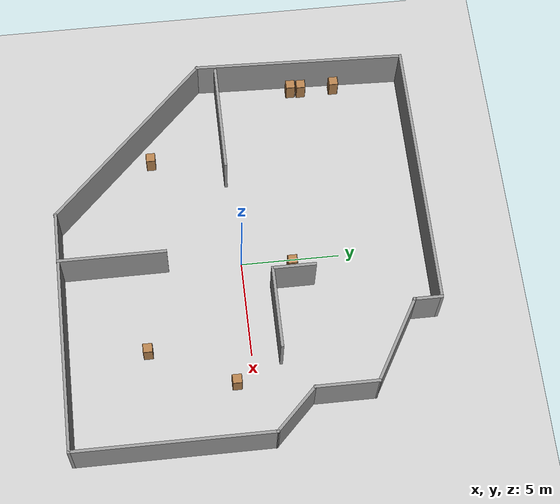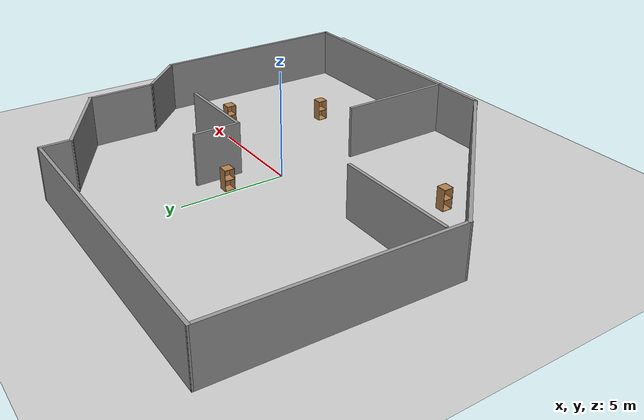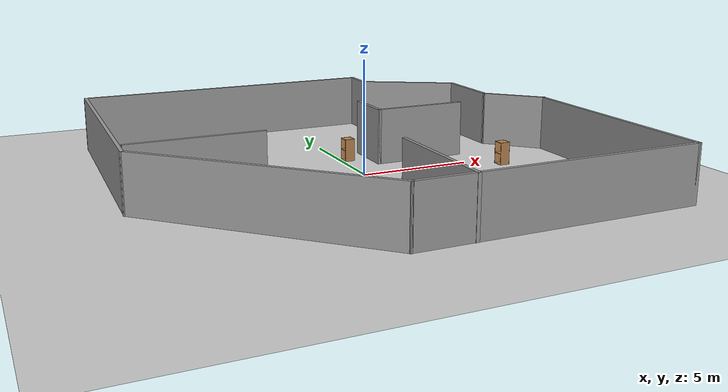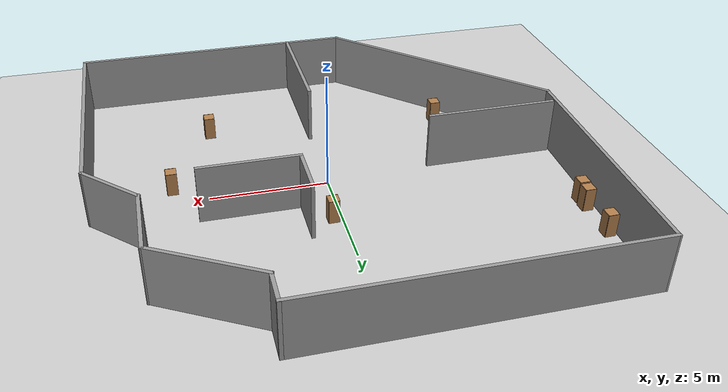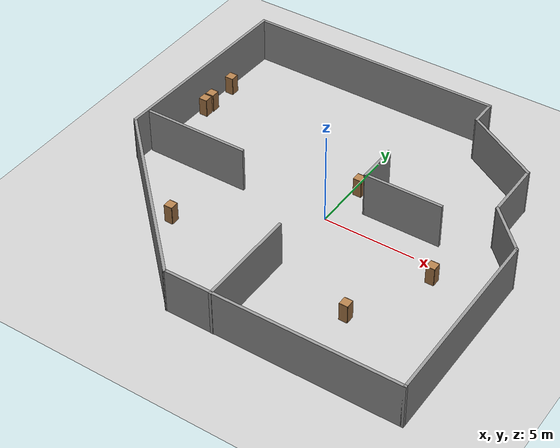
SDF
<sdf version="1.7">
 <world name="default">
  <plugin name="hello" filename="libhello.so"/>
  <light name="sun" type="directional">
   <pose>0 0 10 0 -0 0</pose>
   <diffuse>0.8 0.8 0.8 1</diffuse>
   <specular>0.2 0.2 0.2 1</specular>
   <attenuation>
    <range>1000</range>
    <constant>0.9</constant>
    <linear>0.01</linear>
    <quadratic>0.001</quadratic>
   </attenuation>
   <direction>-0.5 0.1 -0.9</direction>
   <spot><inner_angle>0</inner_angle><outer_angle>0</outer_angle><falloff>0</falloff></spot>
  </light>
  <model name="ground_plane">
   <static>1</static>
   <link name="link">
    <collision name="collision">
     <geometry><plane><normal>0 0 1</normal><size>100 100</size></plane></geometry>
     <surface><friction><ode><mu>100</mu><mu2>50</mu2></ode></friction></surface>
    </collision>
    <visual name="visual">
     <cast_shadows>0</cast_shadows>
     <geometry><plane><normal>0 0 1</normal><size>100 100</size></plane></geometry>
     <material>
      <script><uri>file://media/materials/scripts/gazebo.material</uri><name>Gazebo/Grey</name></script>
     </material>
    </visual>
   </link>
  </model>
  <gravity>0 0 -9.8</gravity>
  <magnetic_field>6e-06 2.3e-05 -4.2e-05</magnetic_field>
  <atmosphere type="adiabatic"/>
  <physics type="ode">
   <max_step_size>0.001</max_step_size>
   <real_time_factor>1</real_time_factor>
   <real_time_update_rate>1000</real_time_update_rate>
  </physics>
  <scene><ambient>0.4 0.4 0.4 1</ambient><background>0.7 0.7 0.7 1</background><shadows>1</shadows></scene>
  <spherical_coordinates>
   <surface_model>EARTH_WGS84</surface_model>
   <latitude_deg>0</latitude_deg>
   <longitude_deg>0</longitude_deg>
   <elevation>0</elevation>
   <heading_deg>0</heading_deg>
  </spherical_coordinates>
  <model name="building">
   <pose>-0.34261 0.15033 0 0 -0 0</pose>
   <link name="Wall_10">
    <collision name="Wall_10_Collision">
     <geometry><box><size>10 0.15 2.5</size></box></geometry>
     <pose>0 0 1.25 0 -0 0</pose>
    </collision>
    <visual name="Wall_10_Visual">
     <pose>0 0 1.25 0 -0 0</pose>
     <geometry><box><size>10 0.15 2.5</size></box></geometry>
     <material>
      <script><uri>file://media/materials/scripts/gazebo.material</uri><name>Gazebo/Grey</name></script>
      <ambient>1 1 1 1</ambient>
     </material>
     <meta><layer>0</layer></meta>
    </visual>
    <pose>10.0994 -4.36829 0 0 -0 1.5708</pose>
   </link>
   <link name="Wall_11">
    <collision name="Wall_11_Collision">
     <geometry><box><size>3 0.15 2.5</size></box></geometry>
     <pose>0 0 1.25 0 -0 0</pose>
    </collision>
    <visual name="Wall_11_Visual">
     <pose>0 0 1.25 0 -0 0</pose>
     <geometry><box><size>3 0.15 2.5</size></box></geometry>
     <material>
      <script><uri>file://media/materials/scripts/gazebo.material</uri><name>Gazebo/Grey</name></script>
      <ambient>1 1 1 1</ambient>
     </material>
     <meta><layer>0</layer></meta>
    </visual>
    <pose>9.09182 1.56434 0 0 -0 2.35619</pose>
   </link>
   <link name="Wall_12">
    <collision name="Wall_12_Collision">
     <geometry><box><size>3.25 0.15 2.5</size></box></geometry>
     <pose>0 0 1.25 0 -0 0</pose>
    </collision>
    <visual name="Wall_12_Visual">
     <pose>0 0 1.25 0 -0 0</pose>
     <geometry><box><size>3.25 0.15 2.5</size></box></geometry>
     <material>
      <script><uri>file://media/materials/scripts/gazebo.material</uri><name>Gazebo/Grey</name></script>
      <ambient>1 1 1 1</ambient>
     </material>
     <meta><layer>0</layer></meta>
    </visual>
    <pose>8.08419 4.12196 0 0 -0 1.5708</pose>
   </link>
   <link name="Wall_13">
    <collision name="Wall_13_Collision">
     <geometry><box><size>4.75 0.15 2.5</size></box></geometry>
     <pose>0 0 1.25 0 -0 0</pose>
    </collision>
    <visual name="Wall_13_Visual">
     <pose>0 0 1.25 0 -0 0</pose>
     <geometry><box><size>4.75 0.15 2.5</size></box></geometry>
     <material>
      <script><uri>file://media/materials/scripts/gazebo.material</uri><name>Gazebo/Grey</name></script>
      <ambient>1 1 1 1</ambient>
     </material>
     <meta><layer>0</layer></meta>
    </visual>
    <pose>6.09233 6.82196 0 0 -0 2.61799</pose>
   </link>
   <link name="Wall_14">
    <collision name="Wall_14_Collision">
     <geometry><box><size>1.5 0.15 2.5</size></box></geometry>
     <pose>0 0 1.25 0 -0 0</pose>
    </collision>
    <visual name="Wall_14_Visual">
     <pose>0 0 1.25 0 -0 0</pose>
     <geometry><box><size>1.5 0.15 2.5</size></box></geometry>
     <material>
      <script><uri>file://media/materials/scripts/gazebo.material</uri><name>Gazebo/Grey</name></script>
      <ambient>1 1 1 1</ambient>
     </material>
     <meta><layer>0</layer></meta>
    </visual>
    <pose>4.10047 8.64696 0 0 -0 1.5708</pose>
   </link>
   <link name="Wall_15">
    <collision name="Wall_15_Collision">
     <geometry><box><size>14 0.15 2.5</size></box></geometry>
     <pose>0 0 1.25 0 -0 0</pose>
    </collision>
    <visual name="Wall_15_Visual">
     <pose>0 0 1.25 0 -0 0</pose>
     <geometry><box><size>14 0.15 2.5</size></box></geometry>
     <material>
      <script><uri>file://media/materials/scripts/gazebo.material</uri><name>Gazebo/Grey</name></script>
      <ambient>1 1 1 1</ambient>
     </material>
     <meta><layer>0</layer></meta>
    </visual>
    <pose>-2.82453 9.32196 0 0 -0 3.14159</pose>
   </link>
   <link name="Wall_16">
    <collision name="Wall_16_Collision">
     <geometry><box><size>10.9221 0.15 2.5</size></box></geometry>
     <pose>0 0 1.25 0 -0 0</pose>
    </collision>
    <visual name="Wall_16_Visual">
     <pose>0 0 1.25 0 -0 0</pose>
     <geometry><box><size>10.9221 0.15 2.5</size></box></geometry>
     <material>
      <script><uri>file://media/materials/scripts/gazebo.material</uri><name>Gazebo/Grey</name></script>
      <ambient>1 1 1 1</ambient>
     </material>
     <meta><layer>0</layer></meta>
    </visual>
    <pose>-9.92449 3.93878 0 0 -0 -1.60329</pose>
   </link>
   <link name="Wall_8">
    <collision name="Wall_8_Collision">
     <geometry><box><size>11.25 0.15 2.5</size></box></geometry>
     <pose>0 0 1.25 0 -0 0</pose>
    </collision>
    <visual name="Wall_8_Visual">
     <pose>0 0 1.25 0 -0 0</pose>
     <geometry><box><size>11.25 0.15 2.5</size></box></geometry>
     <material>
      <script><uri>file://media/materials/scripts/gazebo.material</uri><name>Gazebo/Grey</name></script>
      <ambient>1 1 1 1</ambient>
     </material>
     <meta><layer>0</layer></meta>
    </visual>
    <pose>-6.175 -5.36885 0 0 -0 -0.785398</pose>
   </link>
   <link name="Wall_9">
    <collision name="Wall_9_Collision">
     <geometry><box><size>12.5 0.15 2.5</size></box></geometry>
     <pose>0 0 1.25 0 -0 0</pose>
    </collision>
    <visual name="Wall_9_Visual">
     <pose>0 0 1.25 0 -0 0</pose>
     <geometry><box><size>12.5 0.15 2.5</size></box></geometry>
     <material>
      <script><uri>file://media/materials/scripts/gazebo.material</uri><name>Gazebo/Grey</name></script>
      <ambient>1 1 1 1</ambient>
     </material>
     <meta><layer>0</layer></meta>
    </visual>
    <pose>3.92444 -9.29329 0 0 -0 0</pose>
   </link>
   <static>1</static>
  </model>
  <model name="cabinet">
   <static>1</static>
   <link name="cabinet_bottom_plate">
    <inertial>
     <pose>0 0 -1 0 -0 0</pose>
     <inertia><ixx>2.05</ixx><ixy>0</ixy><ixz>0</ixz><iyy>2.05</iyy><iyz>0</iyz><izz>2.05</izz></inertia>
     <mass>25</mass>
    </inertial>
    <collision name="cabinet_bottom_plate_geom">
     <pose>0 0 0.01 0 -0 0</pose>
     <geometry><box><size>0.45 0.45 0.02</size></box></geometry>
    </collision>
    <visual name="cabinet_bottom_plate_geom_visual">
     <pose>0 0 0.01 0 -0 0</pose>
     <geometry><box><size>0.45 0.45 0.02</size></box></geometry>
     <material>
      <script><uri>file://media/materials/scripts/gazebo.material</uri><name>Gazebo/Wood</name></script>
     </material>
    </visual>
    <collision name="cabinet_bottom_plate_geom_cabinet_back_plate">
     <pose>0.235 0 0.51 0 -0 0</pose>
     <geometry><box><size>0.02 0.45 1.02</size></box></geometry>
    </collision>
    <visual name="cabinet_bottom_plate_geom_cabinet_back_plate_visual">
     <pose>0.235 0 0.51 0 -0 0</pose>
     <geometry><box><size>0.02 0.45 1.02</size></box></geometry>
     <material>
      <script><uri>file://media/materials/scripts/gazebo.material</uri><name>Gazebo/Wood</name></script>
     </material>
    </visual>
    <collision name="cabinet_bottom_plate_geom_cabinet_left_plate">
     <pose>0 0.235 0.51 0 -0 0</pose>
     <geometry><box><size>0.45 0.02 1.02</size></box></geometry>
    </collision>
    <visual name="cabinet_bottom_plate_geom_cabinet_left_plate_visual">
     <pose>0 0.235 0.51 0 -0 0</pose>
     <geometry><box><size>0.45 0.02 1.02</size></box></geometry>
     <material>
      <script><uri>file://media/materials/scripts/gazebo.material</uri><name>Gazebo/Wood</name></script>
     </material>
    </visual>
    <collision name="cabinet_bottom_plate_geom_cabinet_middle_plate">
     <pose>0 0 0.51 0 -0 0</pose>
     <geometry><box><size>0.45 0.45 0.02</size></box></geometry>
    </collision>
    <visual name="cabinet_bottom_plate_geom_cabinet_middle_plate_visual">
     <pose>0 0 0.51 0 -0 0</pose>
     <geometry><box><size>0.45 0.45 0.02</size></box></geometry>
     <material>
      <script><uri>file://media/materials/scripts/gazebo.material</uri><name>Gazebo/Wood</name></script>
     </material>
    </visual>
    <collision name="cabinet_bottom_plate_geom_cabinet_right_plate">
     <pose>0 -0.235 0.51 0 -0 0</pose>
     <geometry><box><size>0.45 0.02 1.02</size></box></geometry>
    </collision>
    <visual name="cabinet_bottom_plate_geom_cabinet_right_plate_visual">
     <pose>0 -0.235 0.51 0 -0 0</pose>
     <geometry><box><size>0.45 0.02 1.02</size></box></geometry>
     <material>
      <script><uri>file://media/materials/scripts/gazebo.material</uri><name>Gazebo/Wood</name></script>
     </material>
    </visual>
    <collision name="cabinet_bottom_plate_geom_cabinet_top_plate">
     <pose>0 0 1.01 0 -0 0</pose>
     <geometry><box><size>0.45 0.45 0.02</size></box></geometry>
    </collision>
    <visual name="cabinet_bottom_plate_geom_cabinet_top_plate_visual">
     <pose>0 0 1.01 0 -0 0</pose>
     <geometry><box><size>0.45 0.45 0.02</size></box></geometry>
     <material>
      <script><uri>file://media/materials/scripts/gazebo.material</uri><name>Gazebo/Wood</name></script>
     </material>
    </visual>
   </link>
   <pose>0.370948 2.56032 0 0 -0 0</pose>
  </model>
  <model name="cabinet_0">
   <static>1</static>
   <link name="cabinet_bottom_plate">
    <inertial>
     <pose>0 0 -1 0 -0 0</pose>
     <inertia><ixx>2.05</ixx><ixy>0</ixy><ixz>0</ixz><iyy>2.05</iyy><iyz>0</iyz><izz>2.05</izz></inertia>
     <mass>25</mass>
    </inertial>
    <collision name="cabinet_bottom_plate_geom">
     <pose>0 0 0.01 0 -0 0</pose>
     <geometry><box><size>0.45 0.45 0.02</size></box></geometry>
    </collision>
    <visual name="cabinet_bottom_plate_geom_visual">
     <pose>0 0 0.01 0 -0 0</pose>
     <geometry><box><size>0.45 0.45 0.02</size></box></geometry>
     <material>
      <script><uri>file://media/materials/scripts/gazebo.material</uri><name>Gazebo/Wood</name></script>
     </material>
    </visual>
    <collision name="cabinet_bottom_plate_geom_cabinet_back_plate">
     <pose>0.235 0 0.51 0 -0 0</pose>
     <geometry><box><size>0.02 0.45 1.02</size></box></geometry>
    </collision>
    <visual name="cabinet_bottom_plate_geom_cabinet_back_plate_visual">
     <pose>0.235 0 0.51 0 -0 0</pose>
     <geometry><box><size>0.02 0.45 1.02</size></box></geometry>
     <material>
      <script><uri>file://media/materials/scripts/gazebo.material</uri><name>Gazebo/Wood</name></script>
     </material>
    </visual>
    <collision name="cabinet_bottom_plate_geom_cabinet_left_plate">
     <pose>0 0.235 0.51 0 -0 0</pose>
     <geometry><box><size>0.45 0.02 1.02</size></box></geometry>
    </collision>
    <visual name="cabinet_bottom_plate_geom_cabinet_left_plate_visual">
     <pose>0 0.235 0.51 0 -0 0</pose>
     <geometry><box><size>0.45 0.02 1.02</size></box></geometry>
     <material>
      <script><uri>file://media/materials/scripts/gazebo.material</uri><name>Gazebo/Wood</name></script>
     </material>
    </visual>
    <collision name="cabinet_bottom_plate_geom_cabinet_middle_plate">
     <pose>0 0 0.51 0 -0 0</pose>
     <geometry><box><size>0.45 0.45 0.02</size></box></geometry>
    </collision>
    <visual name="cabinet_bottom_plate_geom_cabinet_middle_plate_visual">
     <pose>0 0 0.51 0 -0 0</pose>
     <geometry><box><size>0.45 0.45 0.02</size></box></geometry>
     <material>
      <script><uri>file://media/materials/scripts/gazebo.material</uri><name>Gazebo/Wood</name></script>
     </material>
    </visual>
    <collision name="cabinet_bottom_plate_geom_cabinet_right_plate">
     <pose>0 -0.235 0.51 0 -0 0</pose>
     <geometry><box><size>0.45 0.02 1.02</size></box></geometry>
    </collision>
    <visual name="cabinet_bottom_plate_geom_cabinet_right_plate_visual">
     <pose>0 -0.235 0.51 0 -0 0</pose>
     <geometry><box><size>0.45 0.02 1.02</size></box></geometry>
     <material>
      <script><uri>file://media/materials/scripts/gazebo.material</uri><name>Gazebo/Wood</name></script>
     </material>
    </visual>
    <collision name="cabinet_bottom_plate_geom_cabinet_top_plate">
     <pose>0 0 1.01 0 -0 0</pose>
     <geometry><box><size>0.45 0.45 0.02</size></box></geometry>
    </collision>
    <visual name="cabinet_bottom_plate_geom_cabinet_top_plate_visual">
     <pose>0 0 1.01 0 -0 0</pose>
     <geometry><box><size>0.45 0.45 0.02</size></box></geometry>
     <material>
      <script><uri>file://media/materials/scripts/gazebo.material</uri><name>Gazebo/Wood</name></script>
     </material>
    </visual>
   </link>
   <pose>4.41041 -5.12108 0 0 -0 0</pose>
  </model>
  <model name="building2">
   <pose>-2.35403 -2.82924 0 0 -0 0</pose>
   <link name="Wall_0">
    <collision name="Wall_0_Collision">
     <geometry><box><size>5.5 0.15 2.5</size></box></geometry>
     <pose>0 0 1.25 0 -0 0</pose>
    </collision>
    <visual name="Wall_0_Visual">
     <pose>0 0 1.25 0 -0 0</pose>
     <geometry><box><size>5.5 0.15 2.5</size></box></geometry>
     <material>
      <script><uri>file://media/materials/scripts/gazebo.material</uri><name>Gazebo/Grey</name></script>
      <ambient>1 1 1 1</ambient>
     </material>
     <meta><layer>0</layer></meta>
    </visual>
    <pose>2.30403 -3.65576 0 0 -0 -1.5708</pose>
   </link>
   <link name="Wall_2">
    <collision name="Wall_2_Collision">
     <geometry><box><size>5.75 0.15 2.5</size></box></geometry>
     <pose>0 0 1.25 0 -0 0</pose>
    </collision>
    <visual name="Wall_2_Visual">
     <pose>0 0 1.25 0 -0 0</pose>
     <geometry><box><size>5.75 0.15 2.5</size></box></geometry>
     <material>
      <script><uri>file://media/materials/scripts/gazebo.material</uri><name>Gazebo/Grey</name></script>
      <ambient>1 1 1 1</ambient>
     </material>
     <meta><layer>0</layer></meta>
    </visual>
    <pose>-5.04784 2.47639 0 0 -0 3.14159</pose>
   </link>
   <link name="Wall_4">
    <collision name="Wall_4_Collision">
     <geometry><box><size>2.25 0.15 2.5</size></box></geometry>
     <pose>0 0 1.25 0 -0 0</pose>
    </collision>
    <visual name="Wall_4_Visual">
     <pose>0 0 1.25 0 -0 0</pose>
     <geometry><box><size>2.25 0.15 2.5</size></box></geometry>
     <material>
      <script><uri>file://media/materials/scripts/gazebo.material</uri><name>Gazebo/Grey</name></script>
      <ambient>1 1 1 1</ambient>
     </material>
     <meta><layer>0</layer></meta>
    </visual>
    <pose>3.74784 5.28076 0 0 -0 -1.5708</pose>
   </link>
   <link name="Wall_5">
    <collision name="Wall_5_Collision">
     <geometry><box><size>4.25 0.15 2.5</size></box></geometry>
     <pose>0 0 1.25 0 -0 0</pose>
    </collision>
    <visual name="Wall_5_Visual">
     <pose>0 0 1.25 0 -0 0</pose>
     <geometry><box><size>4.25 0.15 2.5</size></box></geometry>
     <material>
      <script><uri>file://media/materials/scripts/gazebo.material</uri><name>Gazebo/Grey</name></script>
      <ambient>1 1 1 1</ambient>
     </material>
     <meta><layer>0</layer></meta>
    </visual>
    <pose>5.79784 4.23076 0 0 -0 0</pose>
   </link>
   <static>1</static>
  </model>
  <model name="cabinet_1">
   <static>1</static>
   <link name="cabinet_bottom_plate">
    <inertial>
     <pose>0 0 -1 0 -0 0</pose>
     <inertia><ixx>2.05</ixx><ixy>0</ixy><ixz>0</ixz><iyy>2.05</iyy><iyz>0</iyz><izz>2.05</izz></inertia>
     <mass>25</mass>
    </inertial>
    <collision name="cabinet_bottom_plate_geom">
     <pose>0 0 0.01 0 -0 0</pose>
     <geometry><box><size>0.45 0.45 0.02</size></box></geometry>
    </collision>
    <visual name="cabinet_bottom_plate_geom_visual">
     <pose>0 0 0.01 0 -0 0</pose>
     <geometry><box><size>0.45 0.45 0.02</size></box></geometry>
     <material>
      <script><uri>file://media/materials/scripts/gazebo.material</uri><name>Gazebo/Wood</name></script>
     </material>
    </visual>
    <collision name="cabinet_bottom_plate_geom_cabinet_back_plate">
     <pose>0.235 0 0.51 0 -0 0</pose>
     <geometry><box><size>0.02 0.45 1.02</size></box></geometry>
    </collision>
    <visual name="cabinet_bottom_plate_geom_cabinet_back_plate_visual">
     <pose>0.235 0 0.51 0 -0 0</pose>
     <geometry><box><size>0.02 0.45 1.02</size></box></geometry>
     <material>
      <script><uri>file://media/materials/scripts/gazebo.material</uri><name>Gazebo/Wood</name></script>
     </material>
    </visual>
    <collision name="cabinet_bottom_plate_geom_cabinet_left_plate">
     <pose>0 0.235 0.51 0 -0 0</pose>
     <geometry><box><size>0.45 0.02 1.02</size></box></geometry>
    </collision>
    <visual name="cabinet_bottom_plate_geom_cabinet_left_plate_visual">
     <pose>0 0.235 0.51 0 -0 0</pose>
     <geometry><box><size>0.45 0.02 1.02</size></box></geometry>
     <material>
      <script><uri>file://media/materials/scripts/gazebo.material</uri><name>Gazebo/Wood</name></script>
     </material>
    </visual>
    <collision name="cabinet_bottom_plate_geom_cabinet_middle_plate">
     <pose>0 0 0.51 0 -0 0</pose>
     <geometry><box><size>0.45 0.45 0.02</size></box></geometry>
    </collision>
    <visual name="cabinet_bottom_plate_geom_cabinet_middle_plate_visual">
     <pose>0 0 0.51 0 -0 0</pose>
     <geometry><box><size>0.45 0.45 0.02</size></box></geometry>
     <material>
      <script><uri>file://media/materials/scripts/gazebo.material</uri><name>Gazebo/Wood</name></script>
     </material>
    </visual>
    <collision name="cabinet_bottom_plate_geom_cabinet_right_plate">
     <pose>0 -0.235 0.51 0 -0 0</pose>
     <geometry><box><size>0.45 0.02 1.02</size></box></geometry>
    </collision>
    <visual name="cabinet_bottom_plate_geom_cabinet_right_plate_visual">
     <pose>0 -0.235 0.51 0 -0 0</pose>
     <geometry><box><size>0.45 0.02 1.02</size></box></geometry>
     <material>
      <script><uri>file://media/materials/scripts/gazebo.material</uri><name>Gazebo/Wood</name></script>
     </material>
    </visual>
    <collision name="cabinet_bottom_plate_geom_cabinet_top_plate">
     <pose>0 0 1.01 0 -0 0</pose>
     <geometry><box><size>0.45 0.45 0.02</size></box></geometry>
    </collision>
    <visual name="cabinet_bottom_plate_geom_cabinet_top_plate_visual">
     <pose>0 0 1.01 0 -0 0</pose>
     <geometry><box><size>0.45 0.45 0.02</size></box></geometry>
     <material>
      <script><uri>file://media/materials/scripts/gazebo.material</uri><name>Gazebo/Wood</name></script>
     </material>
    </visual>
   </link>
   <pose>-6.15682 -4.16196 0 0 -0 0</pose>
  </model>
  <model name="cabinet_2">
   <static>1</static>
   <link name="cabinet_bottom_plate">
    <inertial>
     <pose>0 0 -1 0 -0 0</pose>
     <inertia><ixx>2.05</ixx><ixy>0</ixy><ixz>0</ixz><iyy>2.05</iyy><iyz>0</iyz><izz>2.05</izz></inertia>
     <mass>25</mass>
    </inertial>
    <collision name="cabinet_bottom_plate_geom">
     <pose>0 0 0.01 0 -0 0</pose>
     <geometry><box><size>0.45 0.45 0.02</size></box></geometry>
    </collision>
    <visual name="cabinet_bottom_plate_geom_visual">
     <pose>0 0 0.01 0 -0 0</pose>
     <geometry><box><size>0.45 0.45 0.02</size></box></geometry>
     <material>
      <script><uri>file://media/materials/scripts/gazebo.material</uri><name>Gazebo/Wood</name></script>
     </material>
    </visual>
    <collision name="cabinet_bottom_plate_geom_cabinet_back_plate">
     <pose>0.235 0 0.51 0 -0 0</pose>
     <geometry><box><size>0.02 0.45 1.02</size></box></geometry>
    </collision>
    <visual name="cabinet_bottom_plate_geom_cabinet_back_plate_visual">
     <pose>0.235 0 0.51 0 -0 0</pose>
     <geometry><box><size>0.02 0.45 1.02</size></box></geometry>
     <material>
      <script><uri>file://media/materials/scripts/gazebo.material</uri><name>Gazebo/Wood</name></script>
     </material>
    </visual>
    <collision name="cabinet_bottom_plate_geom_cabinet_left_plate">
     <pose>0 0.235 0.51 0 -0 0</pose>
     <geometry><box><size>0.45 0.02 1.02</size></box></geometry>
    </collision>
    <visual name="cabinet_bottom_plate_geom_cabinet_left_plate_visual">
     <pose>0 0.235 0.51 0 -0 0</pose>
     <geometry><box><size>0.45 0.02 1.02</size></box></geometry>
     <material>
      <script><uri>file://media/materials/scripts/gazebo.material</uri><name>Gazebo/Wood</name></script>
     </material>
    </visual>
    <collision name="cabinet_bottom_plate_geom_cabinet_middle_plate">
     <pose>0 0 0.51 0 -0 0</pose>
     <geometry><box><size>0.45 0.45 0.02</size></box></geometry>
    </collision>
    <visual name="cabinet_bottom_plate_geom_cabinet_middle_plate_visual">
     <pose>0 0 0.51 0 -0 0</pose>
     <geometry><box><size>0.45 0.45 0.02</size></box></geometry>
     <material>
      <script><uri>file://media/materials/scripts/gazebo.material</uri><name>Gazebo/Wood</name></script>
     </material>
    </visual>
    <collision name="cabinet_bottom_plate_geom_cabinet_right_plate">
     <pose>0 -0.235 0.51 0 -0 0</pose>
     <geometry><box><size>0.45 0.02 1.02</size></box></geometry>
    </collision>
    <visual name="cabinet_bottom_plate_geom_cabinet_right_plate_visual">
     <pose>0 -0.235 0.51 0 -0 0</pose>
     <geometry><box><size>0.45 0.02 1.02</size></box></geometry>
     <material>
      <script><uri>file://media/materials/scripts/gazebo.material</uri><name>Gazebo/Wood</name></script>
     </material>
    </visual>
    <collision name="cabinet_bottom_plate_geom_cabinet_top_plate">
     <pose>0 0 1.01 0 -0 0</pose>
     <geometry><box><size>0.45 0.45 0.02</size></box></geometry>
    </collision>
    <visual name="cabinet_bottom_plate_geom_cabinet_top_plate_visual">
     <pose>0 0 1.01 0 -0 0</pose>
     <geometry><box><size>0.45 0.45 0.02</size></box></geometry>
     <material>
      <script><uri>file://media/materials/scripts/gazebo.material</uri><name>Gazebo/Wood</name></script>
     </material>
    </visual>
   </link>
   <pose>6.44797 -0.886586 0 0 -0 0</pose>
  </model>
  <model name="cabinet_3">
   <static>1</static>
   <link name="cabinet_bottom_plate">
    <inertial>
     <pose>0 0 -1 0 -0 0</pose>
     <inertia><ixx>2.05</ixx><ixy>0</ixy><ixz>0</ixz><iyy>2.05</iyy><iyz>0</iyz><izz>2.05</izz></inertia>
     <mass>25</mass>
    </inertial>
    <collision name="cabinet_bottom_plate_geom">
     <pose>0 0 0.01 0 -0 0</pose>
     <geometry><box><size>0.45 0.45 0.02</size></box></geometry>
    </collision>
    <visual name="cabinet_bottom_plate_geom_visual">
     <pose>0 0 0.01 0 -0 0</pose>
     <geometry><box><size>0.45 0.45 0.02</size></box></geometry>
     <material>
      <script><uri>file://media/materials/scripts/gazebo.material</uri><name>Gazebo/Wood</name></script>
     </material>
    </visual>
    <collision name="cabinet_bottom_plate_geom_cabinet_back_plate">
     <pose>0.235 0 0.51 0 -0 0</pose>
     <geometry><box><size>0.02 0.45 1.02</size></box></geometry>
    </collision>
    <visual name="cabinet_bottom_plate_geom_cabinet_back_plate_visual">
     <pose>0.235 0 0.51 0 -0 0</pose>
     <geometry><box><size>0.02 0.45 1.02</size></box></geometry>
     <material>
      <script><uri>file://media/materials/scripts/gazebo.material</uri><name>Gazebo/Wood</name></script>
     </material>
    </visual>
    <collision name="cabinet_bottom_plate_geom_cabinet_left_plate">
     <pose>0 0.235 0.51 0 -0 0</pose>
     <geometry><box><size>0.45 0.02 1.02</size></box></geometry>
    </collision>
    <visual name="cabinet_bottom_plate_geom_cabinet_left_plate_visual">
     <pose>0 0.235 0.51 0 -0 0</pose>
     <geometry><box><size>0.45 0.02 1.02</size></box></geometry>
     <material>
      <script><uri>file://media/materials/scripts/gazebo.material</uri><name>Gazebo/Wood</name></script>
     </material>
    </visual>
    <collision name="cabinet_bottom_plate_geom_cabinet_middle_plate">
     <pose>0 0 0.51 0 -0 0</pose>
     <geometry><box><size>0.45 0.45 0.02</size></box></geometry>
    </collision>
    <visual name="cabinet_bottom_plate_geom_cabinet_middle_plate_visual">
     <pose>0 0 0.51 0 -0 0</pose>
     <geometry><box><size>0.45 0.45 0.02</size></box></geometry>
     <material>
      <script><uri>file://media/materials/scripts/gazebo.material</uri><name>Gazebo/Wood</name></script>
     </material>
    </visual>
    <collision name="cabinet_bottom_plate_geom_cabinet_right_plate">
     <pose>0 -0.235 0.51 0 -0 0</pose>
     <geometry><box><size>0.45 0.02 1.02</size></box></geometry>
    </collision>
    <visual name="cabinet_bottom_plate_geom_cabinet_right_plate_visual">
     <pose>0 -0.235 0.51 0 -0 0</pose>
     <geometry><box><size>0.45 0.02 1.02</size></box></geometry>
     <material>
      <script><uri>file://media/materials/scripts/gazebo.material</uri><name>Gazebo/Wood</name></script>
     </material>
    </visual>
    <collision name="cabinet_bottom_plate_geom_cabinet_top_plate">
     <pose>0 0 1.01 0 -0 0</pose>
     <geometry><box><size>0.45 0.45 0.02</size></box></geometry>
    </collision>
    <visual name="cabinet_bottom_plate_geom_cabinet_top_plate_visual">
     <pose>0 0 1.01 0 -0 0</pose>
     <geometry><box><size>0.45 0.45 0.02</size></box></geometry>
     <material>
      <script><uri>file://media/materials/scripts/gazebo.material</uri><name>Gazebo/Wood</name></script>
     </material>
    </visual>
   </link>
   <pose>-9.82961 3.63807 0 0 -0 0</pose>
  </model>
  <model name="cabinet_4">
   <static>1</static>
   <link name="cabinet_bottom_plate">
    <inertial>
     <pose>0 0 -1 0 -0 0</pose>
     <inertia><ixx>2.05</ixx><ixy>0</ixy><ixz>0</ixz><iyy>2.05</iyy><iyz>0</iyz><izz>2.05</izz></inertia>
     <mass>25</mass>
    </inertial>
    <collision name="cabinet_bottom_plate_geom">
     <pose>0 0 0.01 0 -0 0</pose>
     <geometry><box><size>0.45 0.45 0.02</size></box></geometry>
    </collision>
    <visual name="cabinet_bottom_plate_geom_visual">
     <pose>0 0 0.01 0 -0 0</pose>
     <geometry><box><size>0.45 0.45 0.02</size></box></geometry>
     <material>
      <script><uri>file://media/materials/scripts/gazebo.material</uri><name>Gazebo/Wood</name></script>
     </material>
    </visual>
    <collision name="cabinet_bottom_plate_geom_cabinet_back_plate">
     <pose>0.235 0 0.51 0 -0 0</pose>
     <geometry><box><size>0.02 0.45 1.02</size></box></geometry>
    </collision>
    <visual name="cabinet_bottom_plate_geom_cabinet_back_plate_visual">
     <pose>0.235 0 0.51 0 -0 0</pose>
     <geometry><box><size>0.02 0.45 1.02</size></box></geometry>
     <material>
      <script><uri>file://media/materials/scripts/gazebo.material</uri><name>Gazebo/Wood</name></script>
     </material>
    </visual>
    <collision name="cabinet_bottom_plate_geom_cabinet_left_plate">
     <pose>0 0.235 0.51 0 -0 0</pose>
     <geometry><box><size>0.45 0.02 1.02</size></box></geometry>
    </collision>
    <visual name="cabinet_bottom_plate_geom_cabinet_left_plate_visual">
     <pose>0 0.235 0.51 0 -0 0</pose>
     <geometry><box><size>0.45 0.02 1.02</size></box></geometry>
     <material>
      <script><uri>file://media/materials/scripts/gazebo.material</uri><name>Gazebo/Wood</name></script>
     </material>
    </visual>
    <collision name="cabinet_bottom_plate_geom_cabinet_middle_plate">
     <pose>0 0 0.51 0 -0 0</pose>
     <geometry><box><size>0.45 0.45 0.02</size></box></geometry>
    </collision>
    <visual name="cabinet_bottom_plate_geom_cabinet_middle_plate_visual">
     <pose>0 0 0.51 0 -0 0</pose>
     <geometry><box><size>0.45 0.45 0.02</size></box></geometry>
     <material>
      <script><uri>file://media/materials/scripts/gazebo.material</uri><name>Gazebo/Wood</name></script>
     </material>
    </visual>
    <collision name="cabinet_bottom_plate_geom_cabinet_right_plate">
     <pose>0 -0.235 0.51 0 -0 0</pose>
     <geometry><box><size>0.45 0.02 1.02</size></box></geometry>
    </collision>
    <visual name="cabinet_bottom_plate_geom_cabinet_right_plate_visual">
     <pose>0 -0.235 0.51 0 -0 0</pose>
     <geometry><box><size>0.45 0.02 1.02</size></box></geometry>
     <material>
      <script><uri>file://media/materials/scripts/gazebo.material</uri><name>Gazebo/Wood</name></script>
     </material>
    </visual>
    <collision name="cabinet_bottom_plate_geom_cabinet_top_plate">
     <pose>0 0 1.01 0 -0 0</pose>
     <geometry><box><size>0.45 0.45 0.02</size></box></geometry>
    </collision>
    <visual name="cabinet_bottom_plate_geom_cabinet_top_plate_visual">
     <pose>0 0 1.01 0 -0 0</pose>
     <geometry><box><size>0.45 0.45 0.02</size></box></geometry>
     <material>
      <script><uri>file://media/materials/scripts/gazebo.material</uri><name>Gazebo/Wood</name></script>
     </material>
    </visual>
   </link>
   <pose>-9.79377 4.1871 0 0 -0 0</pose>
  </model>
  <model name="cabinet_5">
   <static>1</static>
   <link name="cabinet_bottom_plate">
    <inertial>
     <pose>0 0 -1 0 -0 0</pose>
     <inertia><ixx>2.05</ixx><ixy>0</ixy><ixz>0</ixz><iyy>2.05</iyy><iyz>0</iyz><izz>2.05</izz></inertia>
     <mass>25</mass>
    </inertial>
    <collision name="cabinet_bottom_plate_geom">
     <pose>0 0 0.01 0 -0 0</pose>
     <geometry><box><size>0.45 0.45 0.02</size></box></geometry>
    </collision>
    <visual name="cabinet_bottom_plate_geom_visual">
     <pose>0 0 0.01 0 -0 0</pose>
     <geometry><box><size>0.45 0.45 0.02</size></box></geometry>
     <material>
      <script><uri>file://media/materials/scripts/gazebo.material</uri><name>Gazebo/Wood</name></script>
     </material>
    </visual>
    <collision name="cabinet_bottom_plate_geom_cabinet_back_plate">
     <pose>0.235 0 0.51 0 -0 0</pose>
     <geometry><box><size>0.02 0.45 1.02</size></box></geometry>
    </collision>
    <visual name="cabinet_bottom_plate_geom_cabinet_back_plate_visual">
     <pose>0.235 0 0.51 0 -0 0</pose>
     <geometry><box><size>0.02 0.45 1.02</size></box></geometry>
     <material>
      <script><uri>file://media/materials/scripts/gazebo.material</uri><name>Gazebo/Wood</name></script>
     </material>
    </visual>
    <collision name="cabinet_bottom_plate_geom_cabinet_left_plate">
     <pose>0 0.235 0.51 0 -0 0</pose>
     <geometry><box><size>0.45 0.02 1.02</size></box></geometry>
    </collision>
    <visual name="cabinet_bottom_plate_geom_cabinet_left_plate_visual">
     <pose>0 0.235 0.51 0 -0 0</pose>
     <geometry><box><size>0.45 0.02 1.02</size></box></geometry>
     <material>
      <script><uri>file://media/materials/scripts/gazebo.material</uri><name>Gazebo/Wood</name></script>
     </material>
    </visual>
    <collision name="cabinet_bottom_plate_geom_cabinet_middle_plate">
     <pose>0 0 0.51 0 -0 0</pose>
     <geometry><box><size>0.45 0.45 0.02</size></box></geometry>
    </collision>
    <visual name="cabinet_bottom_plate_geom_cabinet_middle_plate_visual">
     <pose>0 0 0.51 0 -0 0</pose>
     <geometry><box><size>0.45 0.45 0.02</size></box></geometry>
     <material>
      <script><uri>file://media/materials/scripts/gazebo.material</uri><name>Gazebo/Wood</name></script>
     </material>
    </visual>
    <collision name="cabinet_bottom_plate_geom_cabinet_right_plate">
     <pose>0 -0.235 0.51 0 -0 0</pose>
     <geometry><box><size>0.45 0.02 1.02</size></box></geometry>
    </collision>
    <visual name="cabinet_bottom_plate_geom_cabinet_right_plate_visual">
     <pose>0 -0.235 0.51 0 -0 0</pose>
     <geometry><box><size>0.45 0.02 1.02</size></box></geometry>
     <material>
      <script><uri>file://media/materials/scripts/gazebo.material</uri><name>Gazebo/Wood</name></script>
     </material>
    </visual>
    <collision name="cabinet_bottom_plate_geom_cabinet_top_plate">
     <pose>0 0 1.01 0 -0 0</pose>
     <geometry><box><size>0.45 0.45 0.02</size></box></geometry>
    </collision>
    <visual name="cabinet_bottom_plate_geom_cabinet_top_plate_visual">
     <pose>0 0 1.01 0 -0 0</pose>
     <geometry><box><size>0.45 0.45 0.02</size></box></geometry>
     <material>
      <script><uri>file://media/materials/scripts/gazebo.material</uri><name>Gazebo/Wood</name></script>
     </material>
    </visual>
   </link>
   <pose>-9.80562 5.95463 0 0 -0 0</pose>
  </model>
 </world>
</sdf>
